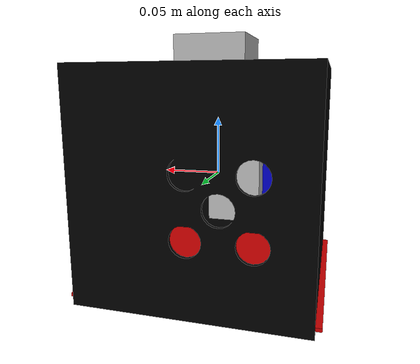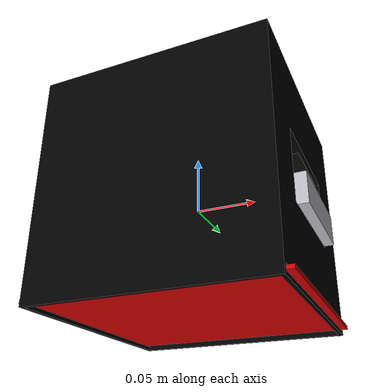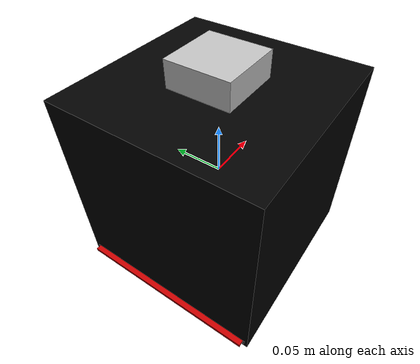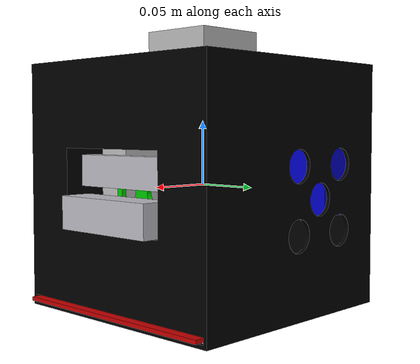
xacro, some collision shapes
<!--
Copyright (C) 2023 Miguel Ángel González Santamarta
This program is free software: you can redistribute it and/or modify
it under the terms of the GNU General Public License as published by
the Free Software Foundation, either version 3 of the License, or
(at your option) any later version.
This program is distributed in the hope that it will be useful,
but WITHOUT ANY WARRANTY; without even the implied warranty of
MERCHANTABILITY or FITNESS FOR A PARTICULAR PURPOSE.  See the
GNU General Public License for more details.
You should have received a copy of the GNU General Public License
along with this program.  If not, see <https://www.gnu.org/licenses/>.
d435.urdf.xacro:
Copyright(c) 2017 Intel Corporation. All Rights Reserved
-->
<?xml version="1.0" ?>

<robot name="vault" xmlns:xacro="http://www.ros.org/wiki/xacro">

    <xacro:include filename="$(find vault_description)/urdf/vault.urdf.xacro"/>
    <xacro:include filename="$(find vault_description)/urdf/materials.xacro"/>

    <link name="base_link"/>
    <xacro:vault parent="base_link">
        <origin xyz="0 0 0" rpy="0 0 0"/>
    </xacro:vault>
</robot>

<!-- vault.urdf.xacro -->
<robot name="vault" xmlns:xacro="http://www.ros.org/wiki/xacro">

    <xacro:macro name="vault" params="parent *origin">

        <xacro:property name="M_PI" value="3.1415926535897931" />

        <!-- Include macros -->
        <xacro:include filename="$(find vault_description)/urdf/inertials.xacro"/>
        <xacro:include filename="$(find vault_description)/urdf/box/box.urdf.xacro" />
        <xacro:include filename="$(find vault_description)/urdf/box/cover.urdf.xacro" />
        <xacro:include filename="$(find vault_description)/urdf/box/realsense_mount.urdf.xacro" />
        <xacro:include filename="$(find vault_description)/urdf/box/computer.urdf.xacro" />
        <xacro:include filename="$(find vault_description)/urdf/box/battery.urdf.xacro" />
        <xacro:include filename="$(find vault_description)/urdf/sensors/all_sensors.urdf.xacro" />

        <!-- joint to base -->
        <joint name="vault_base_joint" type="fixed">
            <axis xyz="1 0 0"/>
            <xacro:insert_block name="origin"/>
            <parent link="${parent}"/>
            <child link="vault_base_link"/>
        </joint>

        <!-- The base link -->
        <link name="vault_base_link">
            <visual>
                <origin rpy="0 0 0" xyz="0 0 0" />
                <geometry>
                    <box size="0.01 0.01 0.01"/>
                </geometry>
                <material name="orange" />
            </visual>
        </link>

        <gazebo reference="vault_base_link">
            <material>Gazebo/Orange</material>
        </gazebo>

        <!-- box -->
        <xacro:vault_box parent="vault_base_link" />
        <xacro:vault_cover parent="vault_box_link" />
        <xacro:vault_realsense_mount parent="vault_box_link" />
        <xacro:vault_computer parent="vault_box_link" />
        <xacro:vault_battery parent="vault_box_link" />

        <!-- sensors -->
        <xacro:sensor_d435i parent="vault_realsense_mount_link" name="d435i" namespace="vault">
            <origin xyz="0 -0.005 -0.0075" rpy="0 0 -${M_PI/2}"/>
        </xacro:sensor_d435i>

        <xacro:sensor_t265 parent="vault_realsense_mount_link" name="t265" namespace="vault" base_link="${parent}">
            <origin xyz="0 0.0035 0.035" rpy="0 0 -${M_PI/2}"/>
        </xacro:sensor_t265>

        <xacro:sensor_imu name="imu" namespace="vault" parent="vault_box_link">
            <origin xyz="0 0 0.044" rpy="0 -${M_PI} ${M_PI/2}"/>
        </xacro:sensor_imu>

        <xacro:sensor_gps name="gps" namespace="vault" parent="vault_box_link">
            <origin xyz="0 0 0.1075" rpy="0 0 0"/>
        </xacro:sensor_gps>
        <xacro:gps_board name="gps" namespace="vault" parent="vault_box_link">
            <origin xyz="-0.077 0 -0.010" rpy="${M_PI/2} 0 ${M_PI/2}"/>
        </xacro:gps_board>
    </xacro:macro>
</robot>

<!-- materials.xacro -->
<robot name="materials" xmlns:xacro="http://www.ros.org/wiki/xacro">
    <material name="red">
        <color rgba="0.8 0 0 1"/>
    </material>

    <material name="green">
        <color rgba="0 0.8 0 1"/>
    </material>

    <material name="blue">
        <color rgba="0 0 0.8 1"/>
    </material>

    <material name="turquoise">
        <color rgba="0.188 0.835 0.784 1"/>
    </material>

    <material name="orange">
        <color rgba="0.8 0.25 0 1"/>
    </material>

    <material name="black">
        <color rgba="0 0 0 1"/>
    </material>

    <material name="dark_gray">
        <color rgba="0.5 0.5 0.5 1"/>
    </material>

    <material name="gray">
        <color rgba="0.753 0.753 0.753 1"/>
    </material>

    <material name="silver">
        <color rgba="0.88 0.88 0.88 1"/>
    </material>

    <material name="white">
        <color rgba="1 1 1 1"/>
    </material>
</robot>

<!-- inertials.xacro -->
<robot name="inertials" xmlns:xacro="http://www.ros.org/wiki/xacro">

    <!-- Math constants -->
    <xacro:property name="math_pi"        value="3.141592653589793" />
    <xacro:property name="math_pi_over_2" value="1.5707963267948966" />
    <xacro:property name="math_pi_over_4" value="0.785398163397448" />

    <!-- Inertial for solid cuboid with dimensions x y z  -->
    <xacro:macro name="solid_cuboid_inertial" params="rpy xyz mass x y z">
        <inertial>
            <origin rpy="${rpy}" xyz="${xyz}"/>
            <mass value="${mass}" />
            <inertia
                ixx="${mass * (y * y + z * z) / 12.0}" ixy="0.0" ixz="0.0"
                iyy="${mass * (x * x + z * z) / 12.0}" iyz="0.0"
                izz="${mass * (x * x + y * y) / 12.0}" />
        </inertial>
    </xacro:macro>

    <!-- Inertial for solid cylinder with radius and length aligned to z-axis  -->
    <xacro:macro name="solid_cylinder_inertial" params="rpy xyz mass radius length">
        <inertial>
            <origin rpy="${rpy}" xyz="${xyz}"/>
            <mass value="${mass}" />
            <inertia
                ixx="${mass * (3.0 * radius * radius + length * length) / 12.0}" ixy="0.0" ixz="0.0"
                iyy="${mass * (3.0 * radius * radius + length * length) / 12.0}" iyz="0.0"
                izz="${mass * (radius * radius) / 2.0}" />
        </inertial>
    </xacro:macro>

</robot>

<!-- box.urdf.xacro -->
<robot name="vault_box" xmlns:xacro="http://www.ros.org/wiki/xacro">

    <xacro:macro name="vault_box" params="parent">

        <xacro:property name="box_heigh" value="0.190" />
        <xacro:property name="box_width" value="0.190" />
        <xacro:property name="box_depth" value="0.190" />
        <xacro:property name="box_mass" value="0.1" />

        <link name="vault_box_link">
            <visual>
                <origin rpy="0 0 0" xyz="0.005 0.005 -0.095" />
                <geometry>
                    <mesh filename="package://vault_description/meshes/box/box.stl" scale="0.001 0.001 0.001"/>
                </geometry>
                <material name="black" />
            </visual>
            <collision>
                <origin rpy="0 0 0" xyz="0 0 0" />
                <geometry>
                    <box size="${box_width} ${box_depth} ${box_heigh}"/>
                </geometry>
            </collision>
            <xacro:solid_cuboid_inertial
                rpy="0 0 0" xyz="0 0 0"
                mass="${box_mass}"
                x="${box_width}" y="${box_depth}" z="${box_heigh}" />
        </link>

        <gazebo reference="vault_box_link">
            <material>Gazebo/Black</material>
        </gazebo>

        <joint name="vault_box_joint" type="fixed">
            <origin rpy="0 0 1.57" xyz="0 0 0"/>
            <parent link="${parent}" />
            <child link="vault_box_link" />
        </joint>

    </xacro:macro>
</robot>

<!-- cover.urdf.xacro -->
<robot name="vault_cover" xmlns:xacro="http://www.ros.org/wiki/xacro">

    <xacro:macro name="vault_cover" params="parent">

        <xacro:property name="box_heigh" value="0.003" />
        <xacro:property name="box_width" value="0.180" />
        <xacro:property name="box_depth" value="0.200" />
        <xacro:property name="box_mass" value="0.01" />

        <link name="vault_cover_link">
            <visual>
                <origin rpy="0 0 0" xyz="0 0 0" />
                <geometry>
                    <box size="${box_width} ${box_depth} ${box_heigh}"/>
                </geometry>
                <material name="red" />
            </visual>
            <collision>
                <origin rpy="0 0 0" xyz="0 0 0" />
                <geometry>
                    <box size="${box_width} ${box_depth} ${box_heigh}"/>
                </geometry>
            </collision>
            <xacro:solid_cuboid_inertial
                rpy="0 0 0" xyz="0 0 0"
                mass="${box_mass}"
                x="${box_width}" y="${box_depth}" z="${box_heigh}" />
        </link>

        <gazebo reference="vault_cover_link">
            <material>Gazebo/Red</material>
        </gazebo>

        <joint name="vault_cover_joint" type="fixed">
            <origin rpy="0 0 0" xyz="0 0 -0.0895"/>
            <parent link="${parent}" />
            <child link="vault_cover_link" />
        </joint>

    </xacro:macro>
</robot>

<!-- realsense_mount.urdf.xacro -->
<robot name="vault_realsense_mount" xmlns:xacro="http://www.ros.org/wiki/xacro">

    <xacro:macro name="vault_realsense_mount" params="parent">

        <xacro:property name="box_heigh" value="0.033" />
        <xacro:property name="box_width" value="0.080" />
        <xacro:property name="box_depth" value="0.040" />
        <xacro:property name="box_mass" value="0.1" />

        <link name="vault_realsense_mount_link">
            <visual>
                <origin rpy="0 0 0" xyz="0.060 0.080 -0.0165" />
                <geometry>
                    <mesh filename="package://vault_description/meshes/box/realsense_mount.stl"  scale="0.001 0.001 0.001"/>
                </geometry>
                <material name="green" />
            </visual>
            <collision>
                <origin rpy="0 0 0" xyz="0 0 0" />
                <geometry>
                    <box size="${box_width} ${box_depth} ${box_heigh}"/>
                </geometry>
            </collision>
            <xacro:solid_cuboid_inertial
                rpy="0 0 0" xyz="0 0 0"
                mass="${box_mass}"
                x="${box_width}" y="${box_depth}" z="${box_heigh}" />
        </link>

        <gazebo reference="vault_realsense_mount_link">
            <material>Gazebo/Green</material>
        </gazebo>

        <joint name="vault_realsense_mount_joint" type="fixed">
            <origin rpy="0 0 0" xyz="0 -0.075 -0.0225"/>
            <parent link="${parent}" />
            <child link="vault_realsense_mount_link" />
        </joint>
    </xacro:macro>
</robot>

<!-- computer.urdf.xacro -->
<robot name="vault_computer" xmlns:xacro="http://www.ros.org/wiki/xacro">

    <xacro:macro name="vault_computer" params="parent">

        <xacro:property name="box_heigh" value="0.040" />
        <xacro:property name="box_width" value="0.110" />
        <xacro:property name="box_depth" value="0.110" />
        <xacro:property name="box_mass" value="0.500" />

        <link name="vault_computer_link">
            <visual>
                <origin rpy="0 0 0" xyz="0 0 0" />
                <geometry>
                    <box size="${box_width} ${box_depth} ${box_heigh}"/>
                </geometry>
                <material name="white" />
            </visual>
            <collision>
                <origin rpy="0 0 0" xyz="0 0 0" />
                <geometry>
                    <box size="${box_width} ${box_depth} ${box_heigh}"/>
                </geometry>
            </collision>
            <xacro:solid_cuboid_inertial
                rpy="0 0 0" xyz="0 0 0"
                mass="${box_mass}"
                x="${box_width}" y="${box_depth}" z="${box_heigh}" />
        </link>

        <gazebo reference="vault_computer_link">
            <material>Gazebo/White</material>
        </gazebo>

        <joint name="vault_computer_joint" type="fixed">
            <origin rpy="0 0 0.785" xyz="0 0 0.072"/>
            <parent link="${parent}" />
            <child link="vault_computer_link" />
        </joint>

    </xacro:macro>
</robot>

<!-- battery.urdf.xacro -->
<robot name="vault_battery" xmlns:xacro="http://www.ros.org/wiki/xacro">

    <xacro:macro name="vault_battery" params="parent">

        <xacro:property name="box_heigh" value="0.076" />
        <xacro:property name="box_width" value="0.158" />
        <xacro:property name="box_depth" value="0.038" />
        <xacro:property name="box_mass" value="1.000" />

        <link name="vault_battery_link">
            <visual>
                <origin rpy="0 0 0" xyz="0 0 0" />
                <geometry>
                    <box size="${box_width} ${box_depth} ${box_heigh}"/>
                </geometry>
                <material name="blue" />
            </visual>
            <collision>
                <origin rpy="0 0 0" xyz="0 0 0" />
                <geometry>
                    <box size="${box_width} ${box_depth} ${box_heigh}"/>
                </geometry>
            </collision>
            <xacro:solid_cuboid_inertial
                rpy="0 0 0" xyz="0 0 0"
                mass="${box_mass}"
                x="${box_width}" y="${box_depth}" z="${box_heigh}" />
        </link>

        <gazebo reference="vault_battery_link">
            <material>Gazebo/Blue</material>
        </gazebo>

        <joint name="vault_battery_joint" type="fixed">
            <origin rpy="0 0 0" xyz="0 0.073 0.014"/>
            <parent link="${parent}" />
            <child link="vault_battery_link" />
        </joint>

    </xacro:macro>
</robot>

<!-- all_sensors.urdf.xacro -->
<robot name="all_sensors" xmlns:xacro="http://www.ros.org/wiki/xacro">

  <!-- Imu -->
  <xacro:include filename="$(find vault_description)/urdf/sensors/imu/imu.urdf.xacro" />

  <!-- Hokuyo -->
  <xacro:include filename="$(find vault_description)/urdf/sensors/hokuyo/hokuyo.urdf.xacro" />

  <!-- GPS -->
  <xacro:include filename="$(find vault_description)/urdf/sensors/gps/gps.urdf.xacro" />
  <xacro:include filename="$(find vault_description)/urdf/sensors/gps/gps_board.urdf.xacro" />

  <!-- Realsense -->
  <xacro:include filename="$(find vault_description)/urdf/sensors/realsense/d435.urdf.xacro" />
  <xacro:include filename="$(find vault_description)/urdf/sensors/realsense/d435i.urdf.xacro" />
  <xacro:include filename="$(find vault_description)/urdf/sensors/realsense/t265.urdf.xacro" />

</robot>

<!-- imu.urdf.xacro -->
<robot name="sensor_imu" xmlns:xacro="http://www.ros.org/wiki/xacro">

  <xacro:macro name="sensor_imu" params="name namespace parent *origin">

    <joint name="${namespace}_${name}_joint" type="fixed">
        <axis xyz="1 0 0"/>
        <xacro:insert_block name="origin"/>
        <parent link="${parent}"/>
        <child link="${namespace}_${name}_link"/>
    </joint>

    <link name="${namespace}_${name}_link">
      <inertial>
        <mass value="0.001"/>
        <origin rpy="0 0 0" xyz="0 0 0"/>
        <inertia ixx="0.0001" ixy="0" ixz="0" iyy="0.000001" iyz="0" izz="0.0001"/>
      </inertial>
      <visual>
        <origin rpy="0 0 0" xyz="0 0 0"/>
        <geometry>
          <box size="0.034 0.034 0.016"/>
        </geometry>
        <material name="turquoise" />
      </visual>
      <collision>
        <origin rpy="0 0 0" xyz="0 0 0"/>
        <geometry>
          <box size="0.034 0.034 0.016"/>
        </geometry>
      </collision>
    </link>

    <gazebo reference="${namespace}_${name}_link">
        <material>Gazebo/Turquoise</material>
    </gazebo>

    <gazebo reference="${namespace}_${name}_link">
      <sensor name="imu_sensor" type="imu">
        <plugin filename="libgazebo_ros_imu_sensor.so" name="imu_controller">
          <ros>
            <namespace>${namespace}</namespace>
            <remapping>~/out:=imu</remapping>
          </ros>
          <initial_orientation_as_reference>false</initial_orientation_as_reference>
          <frame_name>${namespace}_${name}_link</frame_name>
        </plugin>

        <always_on>true</always_on>
        <update_rate>300</update_rate>
        <visualize>true</visualize>

        <imu>
          <angular_velocity>
            <x>
              <noise type="gaussian">
                <mean>0.0</mean>
                <stddev>2e-4</stddev>
                <bias_mean>0.0000075</bias_mean>
                <bias_stddev>0.0000008</bias_stddev>
              </noise>
            </x>
            <y>
              <noise type="gaussian">
                <mean>0.0</mean>
                <stddev>2e-4</stddev>
                <bias_mean>0.0000075</bias_mean>
                <bias_stddev>0.0000008</bias_stddev>
              </noise>
            </y>
            <z>
              <noise type="gaussian">
                <mean>0.0</mean>
                <stddev>2e-4</stddev>
                <bias_mean>0.0000075</bias_mean>
                <bias_stddev>0.0000008</bias_stddev>
              </noise>
            </z>
          </angular_velocity>
          <linear_acceleration>
            <x>
              <noise type="gaussian">
                <mean>0.0</mean>
                <stddev>1.7e-2</stddev>
                <bias_mean>0.1</bias_mean>
                <bias_stddev>0.001</bias_stddev>
              </noise>
            </x>
            <y>
              <noise type="gaussian">
                <mean>0.0</mean>
                <stddev>1.7e-2</stddev>
                <bias_mean>0.1</bias_mean>
                <bias_stddev>0.001</bias_stddev>
              </noise>
            </y>
            <z>
              <noise type="gaussian">
                <mean>0.0</mean>
                <stddev>1.7e-2</stddev>
                <bias_mean>0.1</bias_mean>
                <bias_stddev>0.001</bias_stddev>
              </noise>
            </z>
          </linear_acceleration>
        </imu>

      </sensor>
    </gazebo>

  </xacro:macro>

</robot>

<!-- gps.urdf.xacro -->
<robot name="sensor_gps" xmlns:xacro="http://www.ros.org/wiki/xacro">

  <xacro:macro name="sensor_gps" params="name namespace parent *origin">

    <!-- antenna -->
    <joint name="${namespace}_${name}_antenna_joint" type="fixed">
        <axis xyz="1 0 0"/>
        <xacro:insert_block name="origin"/>
        <parent link="${parent}"/>
        <child link="${namespace}_${name}_antenna_link"/>
    </joint>

    <link name="${namespace}_${name}_antenna_link">
      <inertial>
        <mass value="0.001"/>
        <origin rpy="0 0 0" xyz="0 0 0"/>
        <inertia ixx="0.0001" ixy="0" ixz="0" iyy="0.000001" iyz="0" izz="0.0001"/>
      </inertial>
      <visual>
        <origin rpy="0 0 0" xyz="0 0 0"/>
        <geometry>
          <box size="0.060 0.060 0.025"/>
        </geometry>
        <material name="gray" />
      </visual>
      <collision>
        <origin rpy="0 0 0" xyz="0 0 0"/>
        <geometry>
          <box size="0.060 0.060 0.025"/>
        </geometry>
      </collision>
    </link>

    <gazebo reference="${namespace}_${name}_antenna_link">
      <material>Gazebo/Grey</material>
    </gazebo>

    <!-- plugin -->
    <gazebo reference="${namespace}_${name}_antenna_link">
        <sensor name="gps_sensor" type="gps">
            <always_on>true</always_on>
            <update_rate>30.0</update_rate>

            <gps>
              <position_sensing>
                <horizontal>
                  <noise type="gaussian">
                    <mean>0.0</mean>
                    <stddev>2e-4</stddev>
                  </noise>
                </horizontal>
                <vertical>
                  <noise type="gaussian">
                    <mean>0.0</mean>
                    <stddev>2e-4</stddev>
                  </noise>
                </vertical>
              </position_sensing>
              <velocity_sensing>
                <horizontal>
                  <noise type="gaussian">
                    <mean>0.0</mean>
                    <stddev>2e-4</stddev>
                  </noise>
                </horizontal>
                <vertical>
                  <noise type="gaussian">
                    <mean>0.0</mean>
                    <stddev>2e-4</stddev>
                  </noise>
                </vertical>
              </velocity_sensing>
            </gps>

            <plugin name="gps_plugin" filename="libgazebo_ros_gps_sensor.so">
                <ros>
                  <namespace>${namespace}</namespace>
                  <remapping>~/out:=gps/fix</remapping>
                  <remapping>~/vel:=gps/fix_velocity</remapping>
                </ros>
                <frame_name>${namespace}_${name}_antenna_link</frame_name>
            </plugin>
        </sensor>
        <material>Gazebo/Grey</material>
    </gazebo>

  </xacro:macro>

</robot>

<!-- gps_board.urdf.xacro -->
<robot name="gps_board" xmlns:xacro="http://www.ros.org/wiki/xacro">

  <xacro:macro name="gps_board" params="name namespace parent *origin">

    <!-- board -->
    <joint name="${namespace}_${name}_joint" type="fixed">
        <axis xyz="1 0 0"/>
        <xacro:insert_block name="origin"/>
        <parent link="${parent}"/>
        <child link="${namespace}_${name}_board_link"/>
    </joint>

    <link name="${namespace}_${name}_board_link">
      <inertial>
        <mass value="0.001"/>
        <origin rpy="0 0 0" xyz="0 0 0"/>
        <inertia ixx="0.0001" ixy="0" ixz="0" iyy="0.000001" iyz="0" izz="0.0001"/>
      </inertial>
      <visual>
        <origin rpy="0 0 0" xyz="0 0 0"/>
        <geometry>
          <box size="0.055 0.110 0.030"/>
        </geometry>
        <material name="gray" />
      </visual>
      <collision>
        <origin rpy="0 0 0" xyz="0 0 0"/>
        <geometry>
          <box size="0.055 0.110 0.030"/>
        </geometry>
      </collision>
    </link>

    <gazebo reference="${namespace}_${name}_board_link">
      <material>Gazebo/Grey</material>
    </gazebo>

  </xacro:macro>

</robot>

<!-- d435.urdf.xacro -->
<robot name="sensor_d435" xmlns:xacro="http://ros.org/wiki/xacro">

  <xacro:macro name="sensor_d435" params="parent *origin name:=d435 namespace:=vault use_nominal_extrinsics:=true add_plug:=false use_mesh:=true">
    <!-- Includes -->
    <xacro:include filename="$(find vault_description)/urdf/sensors/realsense/usb_plug.urdf.xacro" />

    <xacro:property name="M_PI" value="3.1415926535897931" />

    <!-- The following values are approximate, and the camera node
     publishing TF values with actual calibrated camera extrinsic values -->
    <xacro:property name="d435_cam_depth_to_infra1_offset" value="0.0"/>
    <xacro:property name="d435_cam_depth_to_infra2_offset" value="-0.050"/>
    <xacro:property name="d435_cam_depth_to_color_offset" value="0.015"/>

    <!-- The following values model the aluminum peripherial case for the
  	D435 camera, with the camera joint represented by the actual
  	peripherial camera tripod mount -->
    <xacro:property name="d435_cam_width" value="0.090"/>
    <xacro:property name="d435_cam_height" value="0.025"/>
    <xacro:property name="d435_cam_depth" value="0.02505"/>
    <xacro:property name="d435_cam_mount_from_center_offset" value="0.0149"/>
    <!-- glass cover is 0.1 mm inwards from front aluminium plate -->
    <xacro:property name="d435_glass_to_front" value="0.1e-3"/>
    <!-- see datasheet Revision 007, Fig. 4-4 page 65 -->
    <xacro:property name="d435_zero_depth_to_glass" value="4.2e-3"/>
    <!-- convenience precomputation to avoid clutter-->
    <xacro:property name="d435_mesh_x_offset" value="${d435_cam_mount_from_center_offset-d435_glass_to_front-d435_zero_depth_to_glass}"/>

    <!-- The following offset is relative the the physical D435 camera peripherial
  	camera tripod mount -->
    <xacro:property name="d435_cam_depth_px" value="${d435_cam_mount_from_center_offset}"/>
    <xacro:property name="d435_cam_depth_py" value="0.0175"/>
    <xacro:property name="d435_cam_depth_pz" value="${d435_cam_height/2}"/>

    <!-- camera body, with origin at bottom screw mount -->
    <joint name="${namespace}_${name}_joint" type="fixed">
      <xacro:insert_block name="origin" />
      <parent link="${parent}"/>
      <child link="${namespace}_${name}_bottom_screw_frame" />
    </joint>
    <link name="${namespace}_${name}_bottom_screw_frame"/>

    <joint name="${namespace}_${name}_link_joint" type="fixed">
      <origin xyz="${d435_mesh_x_offset} ${d435_cam_depth_py} ${d435_cam_depth_pz}" rpy="0 0 0"/>
      <parent link="${namespace}_${name}_bottom_screw_frame"/>
      <child link="${namespace}_${name}_link" />
    </joint>

    <link name="${namespace}_${name}_link">
      <visual>
        <xacro:if value="${use_mesh}">
          <!-- the mesh origin is at front plate in between the two infrared camera axes -->
          <origin xyz="${d435_zero_depth_to_glass + d435_glass_to_front} ${-d435_cam_depth_py} 0" rpy="${M_PI/2} 0 ${M_PI/2}"/>
          <geometry>
            <mesh filename="package://vault_description/meshes/sensors/realsense/d435.dae" />
          </geometry>
        </xacro:if>
        <xacro:unless value="${use_mesh}">
          <origin xyz="0 ${-d435_cam_depth_py} 0" rpy="0 0 0"/>
          <geometry>
            <box size="${d435_cam_depth} ${d435_cam_width} ${d435_cam_height}"/>
          </geometry>
          <material name="aluminum"/>
        </xacro:unless>
      </visual>
      <collision>
        <origin xyz="0 ${-d435_cam_depth_py} 0" rpy="0 0 0"/>
        <geometry>
          <box size="${d435_cam_depth} ${d435_cam_width} ${d435_cam_height}"/>
        </geometry>
      </collision>
      <inertial>
        <!-- The following are not reliable values, and should not be used for modeling -->
        <mass value="0.072" />
        <origin xyz="0 0 0" />
        <inertia ixx="0.003881243" ixy="0.0" ixz="0.0" iyy="0.000498940" iyz="0.0" izz="0.003879257" />
      </inertial>
    </link>

    <gazebo reference="${namespace}_${name}_link">
      <material>Gazebo/Silver</material>
    </gazebo>

    <!-- Use the nominal extrinsics between camera frames if the calibrated extrinsics aren't being published. e.g. running the device in simulation  -->
    <xacro:if value="${use_nominal_extrinsics}">
      <!-- camera depth joints and links -->
      <joint name="${namespace}_${name}_depth_joint" type="fixed">
        <origin xyz="0 0 0" rpy="0 0 0"/>
        <parent link="${namespace}_${name}_link"/>
        <child link="${namespace}_${name}_depth_frame" />
      </joint>
      <link name="${namespace}_${name}_depth_frame"/>

      <joint name="${namespace}_${name}_depth_optical_joint" type="fixed">
        <origin xyz="0 0 0" rpy="${-M_PI/2} 0 ${-M_PI/2}" />
        <parent link="${namespace}_${name}_depth_frame" />
        <child link="${namespace}_${name}_depth_optical_frame" />
      </joint>
      <link name="${namespace}_${name}_depth_optical_frame"/>

      <!-- camera left IR joints and links -->
      <joint name="${namespace}_${name}_infra1_joint" type="fixed">
        <origin xyz="0 ${d435_cam_depth_to_infra1_offset} 0" rpy="0 0 0" />
        <parent link="${namespace}_${name}_link" />
        <child link="${namespace}_${name}_infra1_frame" />
      </joint>
      <link name="${namespace}_${name}_infra1_frame"/>

      <joint name="${namespace}_${name}_infra1_optical_joint" type="fixed">
        <origin xyz="0 0 0" rpy="${-M_PI/2} 0 ${-M_PI/2}" />
        <parent link="${namespace}_${name}_infra1_frame" />
        <child link="${namespace}_${name}_infra1_optical_frame" />
      </joint>
      <link name="${namespace}_${name}_infra1_optical_frame"/>

      <!-- camera right IR joints and links -->
      <joint name="${namespace}_${name}_infra2_joint" type="fixed">
        <origin xyz="0 ${d435_cam_depth_to_infra2_offset} 0" rpy="0 0 0" />
        <parent link="${namespace}_${name}_link" />
        <child link="${namespace}_${name}_infra2_frame" />
      </joint>
      <link name="${namespace}_${name}_infra2_frame"/>

      <joint name="${namespace}_${name}_infra2_optical_joint" type="fixed">
        <origin xyz="0 0 0" rpy="${-M_PI/2} 0 ${-M_PI/2}" />
        <parent link="${namespace}_${name}_infra2_frame" />
        <child link="${namespace}_${name}_infra2_optical_frame" />
      </joint>
      <link name="${namespace}_${name}_infra2_optical_frame"/>

      <!-- camera color joints and links -->
      <joint name="${namespace}_${name}_color_joint" type="fixed">
        <origin xyz="0 ${d435_cam_depth_to_color_offset} 0" rpy="0 0 0" />
        <parent link="${namespace}_${name}_link" />
        <child link="${namespace}_${name}_color_frame" />
      </joint>
      <link name="${namespace}_${name}_color_frame"/>

      <joint name="${namespace}_${name}_color_optical_joint" type="fixed">
        <origin xyz="0 0 0" rpy="${-M_PI/2} 0 ${-M_PI/2}" />
        <parent link="${namespace}_${name}_color_frame" />
        <child link="${namespace}_${name}_color_optical_frame" />
      </joint>
      <link name="${namespace}_${name}_color_optical_frame"/>
    </xacro:if>

    <xacro:if value="${add_plug}">
      <xacro:usb_plug parent="${namespace}_${name}_link" name="${namespace}_${name}_usb_plug">
        <origin xyz="${d435_cam_mount_from_center_offset - 0.02095} ${-d435_cam_depth_py - 0.0353} 0" rpy="0 0 0"/>
      </xacro:usb_plug>
    </xacro:if>

    <!-- gazebo realsense plugin -->
    <gazebo reference="${namespace}_${name}_link">
      <sensor name="${namespace}_${name}" type="depth">
        <always_on>true</always_on>
        <update_rate>60</update_rate>
        <visualize>false</visualize>

        <camera name="${namespace}_${name}">
          <horizontal_fov>1.57</horizontal_fov>
          <image>
            <width>640</width>
            <height>480</height>
            <format>R8G8B8</format>
          </image>
          <clip>
            <near>0.1</near>
            <far>100</far>
          </clip>
          <noise>
            <type>gaussian</type>
            <mean>0.0</mean>
            <stddev>0.007</stddev>
          </noise>
          <distortion>
            <k1>0.0</k1>
            <k2>0.0</k2>
            <k3>0.0</k3>
            <p1>0.0</p1>
            <p2>0.0</p2>
          </distortion>
        </camera>

        <plugin name="${name}_plugin" filename="libgazebo_ros_camera.so">
          <ros>
            <namespace>${namespace}</namespace>

            <remapping>${name}/image_raw:=${name}/color/image_raw</remapping>
            <remapping>${name}/image_raw/compressed:=${name}/color/image_raw/compressed</remapping>
            <remapping>${name}/image_raw/compressedDepth:=${name}/color/image_raw/compressedDepth</remapping>
            <remapping>${name}/camera_info:=${name}/color/camera_info</remapping>
            <remapping>${name}/depth/image_raw:=${name}/depth/image_rect_raw</remapping>
            <remapping>${name}/depth/image_raw/compressed:=${name}/depth/image_rect_raw/compressed</remapping>
            <remapping>${name}/depth/image_raw/compressedDepth:=${name}/depth/image_rect_raw/compressedDepth</remapping>
            <remapping>${name}/depth/camera_info:=${name}/aligned_depth_to_color/camera_info</remapping>
            <remapping>${name}/points:=${name}/depth/color/points</remapping>
          </ros>

          <baseline>0.05</baseline>
          <always_on>true</always_on>
          <update_rate>0.0</update_rate>
          <frame_name>${namespace}_${name}_color_optical_frame</frame_name>
          <camera_name>${name}</camera_name>
          <min_depth>0.3</min_depth>
          <max_depth>3.0</max_depth>
          <focal_length>0</focal_length>
          <hack_baseline>0</hack_baseline>
        </plugin>
      </sensor>
    </gazebo>
  </xacro:macro>
</robot>

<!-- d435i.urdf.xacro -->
<robot name="sensor_d435i" xmlns:xacro="http://ros.org/wiki/xacro">
  <xacro:include filename="$(find vault_description)/urdf/sensors/realsense/d435.urdf.xacro"/>
  <xacro:include filename="$(find vault_description)/urdf/sensors/realsense/d435i_imu_modules.urdf.xacro"/>

  <xacro:macro name="sensor_d435i" params="parent *origin name:=d435i namespace:=vault use_nominal_extrinsics:=true add_plug:=false use_mesh:=true">
    <xacro:sensor_d435 parent="${parent}" name="${name}" namespace="${namespace}" use_nominal_extrinsics="${use_nominal_extrinsics}">
      <xacro:insert_block name="origin" />
    </xacro:sensor_d435>
    <xacro:d435i_imu_modules name="${name}" namespace="${namespace}" use_nominal_extrinsics="${use_nominal_extrinsics}"/>
  </xacro:macro>
</robot>

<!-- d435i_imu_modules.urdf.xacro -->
<!--
License: Apache 2.0. See LICENSE file in root directory.
Copyright(c) 2020 Intel Corporation. All Rights Reserved

This is the URDF model for the inertial modules of the
Intel RealSense 435i camera.
-->
<robot name="d435i_imu_modules" xmlns:xacro="http://www.ros.org/wiki/xacro">
  <xacro:macro name="d435i_imu_modules" params="name:=d435i namespace:=vault use_nominal_extrinsics">
    <xacro:property name="M_PI" value="${pi}" />

    <xacro:if value="${use_nominal_extrinsics}">
      <link name="${namespace}_${name}_accel_frame" />
      <link name="${namespace}_${name}_accel_optical_frame" />
      <link name="${namespace}_${name}_gyro_frame" />
      <link name="${namespace}_${name}_gyro_optical_frame" />
      <link name="${namespace}_${name}_imu_frame" />
      <link name="${namespace}_${name}_imu_optical_frame" />

      <joint name="${namespace}_${name}_accel_joint" type="fixed">
        <origin xyz = "-0.01174 -0.00552 0.0051" rpy = "0 0 0" />
        <parent link="${namespace}_${name}_link" />
        <child link="${namespace}_${name}_accel_frame" />
      </joint>

      <joint name="${namespace}_${name}_accel_optical_joint" type="fixed">
        <origin xyz = "0 0 0" rpy = "${-M_PI/2} 0 ${-M_PI/2}" />
        <parent link="${namespace}_${name}_accel_frame" />
        <child link="${namespace}_${name}_accel_optical_frame" />
      </joint>

      <joint name="${namespace}_${name}_gyro_joint" type="fixed">
        <origin xyz = "-0.01174 -0.00552 0.0051" rpy = "0 0 0" />
        <parent link="${namespace}_${name}_link" />
        <child link="${namespace}_${name}_gyro_frame" />
      </joint>

      <joint name="${namespace}_${name}_gyro_optical_joint" type="fixed">
        <origin xyz = "0 0 0" rpy = "${-M_PI/2} 0 ${-M_PI/2}" />
        <parent link="${namespace}_${name}_gyro_frame" />
        <child link="${namespace}_${name}_gyro_optical_frame" />
      </joint>

      <joint name="${namespace}_${name}_imu_joint" type="fixed">
        <origin xyz = "-0.01174 -0.00552 0.0051" rpy = "0 0 0" />
        <parent link="${namespace}_${name}_link" />
        <child link="${namespace}_${name}_imu_frame" />
      </joint>

      <joint name="${namespace}_${name}_imu_optical_joint" type="fixed">
        <origin xyz = "0 0 0" rpy = "${-M_PI/2} 0 ${-M_PI/2}" />
        <parent link="${namespace}_${name}_imu_frame" />
        <child link="${namespace}_${name}_imu_optical_frame" />
      </joint>

      <gazebo reference="${namespace}_${name}_imu_optical_frame">
        <sensor name="${name}_imu_plugin" type="imu">
          <plugin filename="libgazebo_ros_imu_sensor.so" name="${name}_imu_controller">
            <ros>
              <namespace>${namespace}</namespace>
              <remapping>~/out:=${name}/imu</remapping>
            </ros>
            <initial_orientation_as_reference>false</initial_orientation_as_reference>
            <frame_name>${namespace}_${name}_imu_optical_frame</frame_name>
          </plugin>

          <always_on>true</always_on>
          <update_rate>200</update_rate>
          <visualize>true</visualize>

          <imu>
            <angular_velocity>
              <x>
                <noise type="gaussian">
                  <mean>0.0</mean>
                  <stddev>2e-4</stddev>
                  <bias_mean>0.0000075</bias_mean>
                  <bias_stddev>0.0000008</bias_stddev>
                </noise>
              </x>
              <y>
                <noise type="gaussian">
                  <mean>0.0</mean>
                  <stddev>2e-4</stddev>
                  <bias_mean>0.0000075</bias_mean>
                  <bias_stddev>0.0000008</bias_stddev>
                </noise>
              </y>
              <z>
                <noise type="gaussian">
                  <mean>0.0</mean>
                  <stddev>2e-4</stddev>
                  <bias_mean>0.0000075</bias_mean>
                  <bias_stddev>0.0000008</bias_stddev>
                </noise>
              </z>
            </angular_velocity>
            <linear_acceleration>
              <x>
                <noise type="gaussian">
                  <mean>0.0</mean>
                  <stddev>1.7e-2</stddev>
                  <bias_mean>0.1</bias_mean>
                  <bias_stddev>0.001</bias_stddev>
                </noise>
              </x>
              <y>
                <noise type="gaussian">
                  <mean>0.0</mean>
                  <stddev>1.7e-2</stddev>
                  <bias_mean>0.1</bias_mean>
                  <bias_stddev>0.001</bias_stddev>
                </noise>
              </y>
              <z>
                <noise type="gaussian">
                  <mean>0.0</mean>
                  <stddev>1.7e-2</stddev>
                  <bias_mean>0.1</bias_mean>
                  <bias_stddev>0.001</bias_stddev>
                </noise>
              </z>
            </linear_acceleration>
          </imu>

        </sensor>
      </gazebo>

    </xacro:if>
  </xacro:macro>
</robot>

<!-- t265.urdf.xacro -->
<robot name="sensor_t265" xmlns:xacro="http://ros.org/wiki/xacro">

    <xacro:macro name="t265_fisheye" params="name namespace reference_frame topic">
        <gazebo reference="${namespace}_${name}_link">
            <sensor name="${name}_${topic}" type="wideanglecamera">
                <camera>
                    <horizontal_fov>6.283</horizontal_fov>
                    <image>
                        <width>800</width>
                        <height>848</height>
                    </image>
                    <clip>
                        <near>0.1</near>
                        <far>100</far>
                    </clip>
                    <lens>
                        <type>custom</type>
                        <custom_function>
                            <c1>1.05</c1>
                            <c2>4</c2>
                            <f>1.0</f>
                            <fun>tan</fun>
                        </custom_function>
                        <scale_to_hfov>true</scale_to_hfov>
                        <cutoff_angle>${M_PI}</cutoff_angle>
                        <env_texture_size>512</env_texture_size>
                    </lens>
                    <always_on>true</always_on>
                    <update_rate>30</update_rate>
                    <distortion>
                        <k1>-0.007419134024530649</k1>
                        <k2>0.041209351271390915</k2>
                        <p1>-0.03811917081475258</p1>
                        <p2>0.006366158835589886</p2>
                        <k3>0.0</k3>
                    </distortion>
                </camera>

                <plugin name="${name}_${topic}_plugin" filename="libgazebo_ros_camera.so">
                    <ros>
                        <namespace>${namespace}</namespace>
                    </ros>

                    <always_on>true</always_on>
                    <camera_name>${name}/${topic}</camera_name>
                    <frame_name>${reference_frame}</frame_name>
                    <hack_baseline>-0.0</hack_baseline>
                    <focal_length>285.5480041503906</focal_length>
                    <cx>416.00531005859375</cx>
                    <cy>403.38909912109375</cy>
                </plugin>
            </sensor>
        </gazebo>
    </xacro:macro>

    <xacro:macro name="sensor_t265" params="name:=t265 namespace:=vault parent base_link *origin">

        <xacro:include filename="$(find vault_description)/urdf/sensors/realsense/materials.urdf.xacro" />
        <xacro:property name="M_PI" value="3.1415926535897931" />

        <joint name="${namespace}_${name}_pose_frame_joint" type="fixed">
            <parent link="${parent}"/>
            <child link="${namespace}_${name}_pose_frame"/>
            <xacro:insert_block name="origin"/>
        </joint>

        <link name="${namespace}_${name}_pose_frame">
            <visual>
                <origin rpy="1.57 0 1.57" xyz="0 0 0"/>
                <geometry>
                    <mesh filename="package://vault_description/meshes/sensors/realsense/t265.stl" scale="0.001 0.001 0.001"/>
                </geometry>
                <material name="aluminum"/>
            </visual>
            <collision>
                <geometry>
                    <box size="0.013 0.108 0.024"/>
                </geometry>
            </collision>
            <inertial>
                <mass value="0.055"/>
                <origin rpy="0 0 0" xyz="0 0 0"/>
                <inertia ixx="9.108e-05"
                        ixy="0"
                        ixz="0"
                        iyy="2.51e-06"
                        iyz="0"
                        izz="8.931e-05"/>
            </inertial>
        </link>

        <gazebo reference="${namespace}_${name}_pose_frame">
        <material>Gazebo/Silver</material>
        </gazebo>

        <joint name="${namespace}_${name}_joint" type="fixed">
            <parent link="${namespace}_${name}_pose_frame"/>
            <child link="${namespace}_${name}_link"/>
            <origin rpy="0 0 0" xyz="0 0 0"/>
        </joint>
        <link name="${namespace}_${name}_link"/>

        <joint name="${namespace}_${name}_fisheye1_joint" type="fixed">
            <parent link="${namespace}_${name}_link"/>
            <child link="${namespace}_${name}_fisheye1_frame"/>
            <origin rpy="${M_PI} 0 ${M_PI}" xyz="0 0.032 0"/>
        </joint>
        <link name="${namespace}_${name}_fisheye1_frame"/>

        <joint name="${namespace}_${name}_ligned_depth_to_fisheye1_joint" type="fixed">
            <parent link="${namespace}_${name}_link"/>
            <child link="${namespace}_${name}_aligned_depth_to_fisheye1_frame"/>
            <origin rpy="${M_PI} 0 ${M_PI}" xyz="0 0.032 0"/>
        </joint>
        <link name="${namespace}_${name}_aligned_depth_to_fisheye1_frame"/>

        <joint name="${namespace}_${name}_fisheye1_optical_joint" type="fixed">
            <parent link="${namespace}_${name}_aligned_depth_to_fisheye1_frame"/>
            <child link="${namespace}_${name}_fisheye1_optical_frame"/>
            <origin rpy="${M_PI/2} 0 -${M_PI/2}" xyz="0 0 0"/>
        </joint>
        <link name="${namespace}_${name}_fisheye1_optical_frame"/>
        <xacro:t265_fisheye
            name="${name}"
            namespace="${namespace}"
            reference_frame="${namespace}_${name}_fisheye1_optical_frame"
            topic="fisheye1">
        </xacro:t265_fisheye>

        <joint name="${namespace}_${name}_fisheye2_joint" type="fixed">
            <parent link="${namespace}_${name}_link"/>
            <child link="${namespace}_${name}_fisheye2_frame"/>
            <origin rpy="${M_PI} 0 ${M_PI}" xyz="0 -0.032 0"/>
        </joint>
        <link name="${namespace}_${name}_fisheye2_frame"/>

        <joint name="${namespace}_${name}_fisheye2_optical_joint" type="fixed">
            <parent link="${namespace}_${name}_fisheye2_frame"/>
            <child link="${namespace}_${name}_fisheye2_optical_frame"/>
            <origin rpy="${M_PI/2} 0 -${M_PI/2}" xyz="0 0 0"/>
        </joint>
        <link name="${namespace}_${name}_fisheye2_optical_frame"/>
        <xacro:t265_fisheye
            name="${name}"
            namespace="${namespace}"
            reference_frame="${namespace}_${name}_fisheye2_optical_frame"
            topic="fisheye2">
        </xacro:t265_fisheye>

        <joint name="${namespace}_${name}_gyro_joint" type="fixed">
            <parent link="${namespace}_${name}_link"/>
            <child link="${namespace}_${name}_gyro_frame"/>
            <origin rpy="0 0 ${M_PI}" xyz="0 0.021 0"/>
        </joint>
        <link name="${namespace}_${name}_gyro_frame"/>

        <joint name="${namespace}_${name}_gyro_optical_joint" type="fixed">
            <parent link="${namespace}_${name}_gyro_frame"/>
            <child link="${namespace}_${name}_gyro_optical_frame"/>
            <origin rpy="${M_PI/2} 0 -${M_PI/2}" xyz="0 0 0"/>
        </joint>
        <link name="${namespace}_${name}_gyro_optical_frame"/>

        <joint name="${namespace}_${name}_accel_joint" type="fixed">
            <parent link="${namespace}_${name}_link"/>
            <child link="${namespace}_${name}_accel_frame"/>
            <origin rpy="0 0 ${M_PI}" xyz="0 0.021 0"/>
        </joint>
        <link name="${namespace}_${name}_accel_frame"/>

        <joint name="${namespace}_${name}_accel_optical_joint" type="fixed">
            <parent link="${namespace}_${name}_accel_frame"/>
            <child link="${namespace}_${name}_accel_optical_frame"/>
            <origin rpy="${M_PI/2} 0 -${M_PI/2}" xyz="0 0 0"/>
        </joint>
        <link name="${namespace}_${name}_accel_optical_frame"/>

        <joint name="${namespace}_${name}_imu_joint" type="fixed">
            <parent link="${namespace}_${name}_link"/>
            <child link="${namespace}_${name}_imu_frame"/>
            <origin rpy="0 0 ${M_PI}" xyz="0 0.021 0"/>
        </joint>
        <link name="${namespace}_${name}_imu_frame"/>

        <joint name="${namespace}_${name}_imu_optical_joint" type="fixed">
            <parent link="${namespace}_${name}_imu_frame"/>
            <child link="${namespace}_${name}_imu_optical_frame"/>
            <origin rpy="${M_PI/2} 0 -${M_PI/2}" xyz="0 0 0"/>
        </joint>
        <link name="${namespace}_${name}_imu_optical_frame"/>

        <gazebo reference="${namespace}_${name}_imu_optical_frame">
            <gravity>true</gravity>
            <sensor name="${name}_imu_plugin" type="imu">
                <always_on>true</always_on>
                <update_rate>200</update_rate>
                <visualize>false</visualize>
                <plugin filename="libgazebo_ros_imu_sensor.so" name="imu_plugin">
                    <ros>
                        <namespace>${namespace}</namespace>
                        <remapping>~/out:=${name}/imu</remapping>
                    </ros>
                    <frame_name>${namespace}_${name}_imu_optical_frame</frame_name>
                </plugin>

                <imu>
                    <angular_velocity>
                    <x>
                        <noise type="gaussian">
                        <mean>0.0</mean>
                        <stddev>2e-4</stddev>
                        <bias_mean>0.0000075</bias_mean>
                        <bias_stddev>0.0000008</bias_stddev>
                        </noise>
                    </x>
                    <y>
                        <noise type="gaussian">
                        <mean>0.0</mean>
                        <stddev>2e-4</stddev>
                        <bias_mean>0.0000075</bias_mean>
                        <bias_stddev>0.0000008</bias_stddev>
                        </noise>
                    </y>
                    <z>
                        <noise type="gaussian">
                        <mean>0.0</mean>
                        <stddev>2e-4</stddev>
                        <bias_mean>0.0000075</bias_mean>
                        <bias_stddev>0.0000008</bias_stddev>
                        </noise>
                    </z>
                    </angular_velocity>
                    <linear_acceleration>
                    <x>
                        <noise type="gaussian">
                        <mean>0.0</mean>
                        <stddev>1.7e-2</stddev>
                        <bias_mean>0.1</bias_mean>
                        <bias_stddev>0.001</bias_stddev>
                        </noise>
                    </x>
                    <y>
                        <noise type="gaussian">
                        <mean>0.0</mean>
                        <stddev>1.7e-2</stddev>
                        <bias_mean>0.1</bias_mean>
                        <bias_stddev>0.001</bias_stddev>
                        </noise>
                    </y>
                    <z>
                        <noise type="gaussian">
                        <mean>0.0</mean>
                        <stddev>1.7e-2</stddev>
                        <bias_mean>0.1</bias_mean>
                        <bias_stddev>0.001</bias_stddev>
                        </noise>
                    </z>
                    </linear_acceleration>
                </imu>

            </sensor>
        </gazebo>

        <!-- odom -->
        <gazebo>
            <plugin name="${name}_p3d_plugin" filename="libgazebo_ros_p3d.so">
                <ros>
                    <namespace>${namespace}</namespace>
                    <remapping>odom:=${name}/pose/sample</remapping>
                </ros>

                <always_on>true</always_on>
                <body_name>${base_link}</body_name>
                <frame_name>odom</frame_name>
                <update_rate>200</update_rate>
                <xyz_offset>0 0 0</xyz_offset>
                <rpy_offset>0 0 0</rpy_offset>
                <gaussian_noise>0</gaussian_noise>
            </plugin>
        </gazebo>

    </xacro:macro>

</robot>
